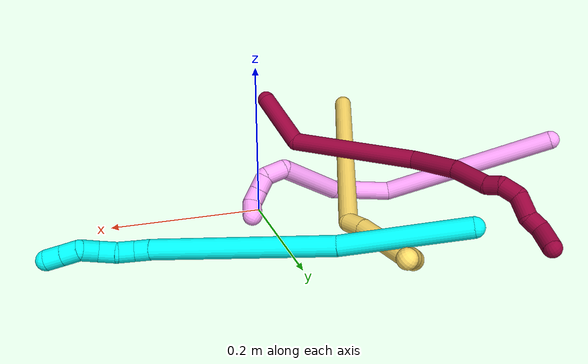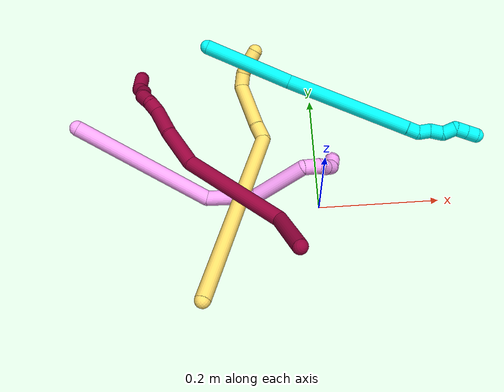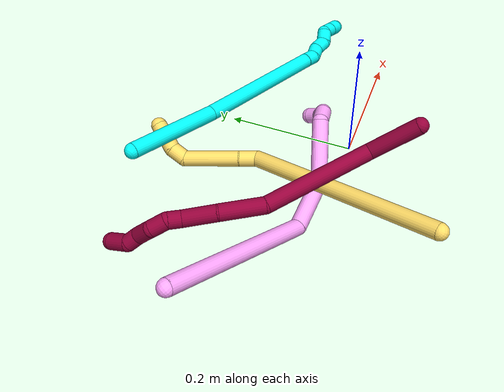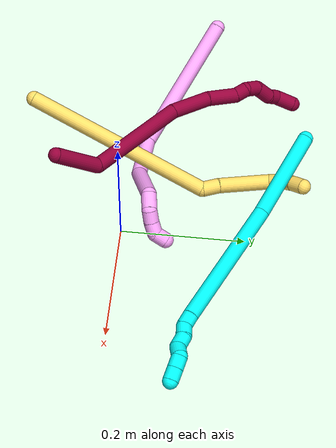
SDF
<sdf version="1.7">
 <world name="default">
  <model name="3">
   <static>0</static>
   <link name="3">
    <collision name="collision-cylinder-e_1_1_4">
     <pose>0.025206 -0.015582 -0.071401 2.92673 0.332128 1.9981</pose>
     <geometry><cylinder><radius>0.0125</radius><length>0.154611</length></cylinder></geometry>
     <surface>
      <friction><ode><mu>1.16</mu><mu2>1.16</mu2><slip1>0</slip1><slip2>0</slip2></ode></friction>
      <contact><ode><kp>1e+06</kp><kd>1</kd><max_vel>0</max_vel><min_depth>0.001</min_depth></ode></contact>
     </surface>
    </collision>
    <visual name="visual-cylinder-e_1_1_4">
     <pose>0.025206 -0.015582 -0.071401 2.92673 0.332128 1.9981</pose>
     <geometry><cylinder><radius>0.0125</radius><length>0.154611</length></cylinder></geometry>
     <material><ambient>0.003922 1 0.996078 1</ambient></material>
    </visual>
    <collision name="collision-cylinder-e_2_4_5">
     <pose>0.084124 -0.041281 -0.247109 3.0449 0.311239 2.5433</pose>
     <geometry><cylinder><radius>0.0125</radius><length>0.220173</length></cylinder></geometry>
     <surface>
      <friction><ode><mu>1.16</mu><mu2>1.16</mu2><slip1>0</slip1><slip2>0</slip2></ode></friction>
      <contact><ode><kp>1e+06</kp><kd>1</kd><max_vel>0</max_vel><min_depth>0.001</min_depth></ode></contact>
     </surface>
    </collision>
    <visual name="visual-cylinder-e_2_4_5">
     <pose>0.084124 -0.041281 -0.247109 3.0449 0.311239 2.5433</pose>
     <geometry><cylinder><radius>0.0125</radius><length>0.220173</length></cylinder></geometry>
     <material><ambient>0.003922 1 0.996078 1</ambient></material>
    </visual>
    <collision name="collision-cylinder-e_3_5_6">
     <pose>0.120963 -0.053057 -0.360888 2.96822 0.314262 2.13818</pose>
     <geometry><cylinder><radius>0.0125</radius><length>0.020222</length></cylinder></geometry>
     <surface>
      <friction><ode><mu>1.16</mu><mu2>1.16</mu2><slip1>0</slip1><slip2>0</slip2></ode></friction>
      <contact><ode><kp>1e+06</kp><kd>1</kd><max_vel>0</max_vel><min_depth>0.001</min_depth></ode></contact>
     </surface>
    </collision>
    <visual name="visual-cylinder-e_3_5_6">
     <pose>0.120963 -0.053057 -0.360888 2.96822 0.314262 2.13818</pose>
     <geometry><cylinder><radius>0.0125</radius><length>0.020222</length></cylinder></geometry>
     <material><ambient>0.003922 1 0.996078 1</ambient></material>
    </visual>
    <collision name="collision-cylinder-e_4_6_7">
     <pose>0.12185 -0.056544 -0.380275 2.95928 -0.218431 -1.75179</pose>
     <geometry><cylinder><radius>0.0125</radius><length>0.020655</length></cylinder></geometry>
     <surface>
      <friction><ode><mu>1.16</mu><mu2>1.16</mu2><slip1>0</slip1><slip2>0</slip2></ode></friction>
      <contact><ode><kp>1e+06</kp><kd>1</kd><max_vel>0</max_vel><min_depth>0.001</min_depth></ode></contact>
     </surface>
    </collision>
    <visual name="visual-cylinder-e_4_6_7">
     <pose>0.12185 -0.056544 -0.380275 2.95928 -0.218431 -1.75179</pose>
     <geometry><cylinder><radius>0.0125</radius><length>0.020655</length></cylinder></geometry>
     <material><ambient>0.003922 1 0.996078 1</ambient></material>
    </visual>
    <collision name="collision-cylinder-e_5_7_8">
     <pose>0.121295 -0.058583 -0.401171 3.12232 0.152073 2.8899</pose>
     <geometry><cylinder><radius>0.0125</radius><length>0.022222</length></cylinder></geometry>
     <surface>
      <friction><ode><mu>1.16</mu><mu2>1.16</mu2><slip1>0</slip1><slip2>0</slip2></ode></friction>
      <contact><ode><kp>1e+06</kp><kd>1</kd><max_vel>0</max_vel><min_depth>0.001</min_depth></ode></contact>
     </surface>
    </collision>
    <visual name="visual-cylinder-e_5_7_8">
     <pose>0.121295 -0.058583 -0.401171 3.12232 0.152073 2.8899</pose>
     <geometry><cylinder><radius>0.0125</radius><length>0.022222</length></cylinder></geometry>
     <material><ambient>0.003922 1 0.996078 1</ambient></material>
    </visual>
    <collision name="collision-cylinder-e_6_8_9">
     <pose>0.117951 -0.05905 -0.421965 3.11561 -0.473281 -3.03394</pose>
     <geometry><cylinder><radius>0.0125</radius><length>0.022059</length></cylinder></geometry>
     <surface>
      <friction><ode><mu>1.16</mu><mu2>1.16</mu2><slip1>0</slip1><slip2>0</slip2></ode></friction>
      <contact><ode><kp>1e+06</kp><kd>1</kd><max_vel>0</max_vel><min_depth>0.001</min_depth></ode></contact>
     </surface>
    </collision>
    <visual name="visual-cylinder-e_6_8_9">
     <pose>0.117951 -0.05905 -0.421965 3.11561 -0.473281 -3.03394</pose>
     <geometry><cylinder><radius>0.0125</radius><length>0.022059</length></cylinder></geometry>
     <material><ambient>0.003922 1 0.996078 1</ambient></material>
    </visual>
    <collision name="collision-cylinder-e_7_9_10">
     <pose>0.115183 -0.062927 -0.440833 2.76107 0.22768 1.07149</pose>
     <geometry><cylinder><radius>0.0125</radius><length>0.02002</length></cylinder></geometry>
     <surface>
      <friction><ode><mu>1.16</mu><mu2>1.16</mu2><slip1>0</slip1><slip2>0</slip2></ode></friction>
      <contact><ode><kp>1e+06</kp><kd>1</kd><max_vel>0</max_vel><min_depth>0.001</min_depth></ode></contact>
     </surface>
    </collision>
    <visual name="visual-cylinder-e_7_9_10">
     <pose>0.115183 -0.062927 -0.440833 2.76107 0.22768 1.07149</pose>
     <geometry><cylinder><radius>0.0125</radius><length>0.02002</length></cylinder></geometry>
     <material><ambient>0.003922 1 0.996078 1</ambient></material>
    </visual>
    <collision name="collision-cylinder-e_8_10_2">
     <pose>0.119738 -0.0701 -0.45897 2.76889 0.231133 1.10378</pose>
     <geometry><cylinder><radius>0.0125</radius><length>0.020038</length></cylinder></geometry>
     <surface>
      <friction><ode><mu>1.16</mu><mu2>1.16</mu2><slip1>0</slip1><slip2>0</slip2></ode></friction>
      <contact><ode><kp>1e+06</kp><kd>1</kd><max_vel>0</max_vel><min_depth>0.001</min_depth></ode></contact>
     </surface>
    </collision>
    <visual name="visual-cylinder-e_8_10_2">
     <pose>0.119738 -0.0701 -0.45897 2.76889 0.231133 1.10378</pose>
     <geometry><cylinder><radius>0.0125</radius><length>0.020038</length></cylinder></geometry>
     <material><ambient>0.003922 1 0.996078 1</ambient></material>
    </visual>
    <collision name="collision-sphere-2">
     <pose>0.122033 -0.073651 -0.468053 0 -0 0</pose>
     <geometry><sphere><radius>0.0125</radius></sphere></geometry>
     <surface>
      <friction><ode><mu>1.16</mu><mu2>1.16</mu2><slip1>0</slip1><slip2>0</slip2></ode></friction>
      <contact><ode><kp>1e+06</kp><kd>1</kd><max_vel>0</max_vel><min_depth>0.001</min_depth></ode></contact>
     </surface>
    </collision>
    <visual name="visual-sphere-2">
     <pose>0.122033 -0.073651 -0.468053 0 -0 0</pose>
     <geometry><sphere><radius>0.0125</radius></sphere></geometry>
     <material><ambient>0.003922 1 0.996078 1</ambient></material>
    </visual>
    <collision name="collision-sphere-10">
     <pose>0.117443 -0.066549 -0.449887 0 -0 0</pose>
     <geometry><sphere><radius>0.0125</radius></sphere></geometry>
     <surface>
      <friction><ode><mu>1.16</mu><mu2>1.16</mu2><slip1>0</slip1><slip2>0</slip2></ode></friction>
      <contact><ode><kp>1e+06</kp><kd>1</kd><max_vel>0</max_vel><min_depth>0.001</min_depth></ode></contact>
     </surface>
    </collision>
    <visual name="visual-sphere-10">
     <pose>0.117443 -0.066549 -0.449887 0 -0 0</pose>
     <geometry><sphere><radius>0.0125</radius></sphere></geometry>
     <material><ambient>0.003922 1 0.996078 1</ambient></material>
    </visual>
    <collision name="collision-sphere-9">
     <pose>0.112924 -0.059305 -0.431779 0 -0 0</pose>
     <geometry><sphere><radius>0.0125</radius></sphere></geometry>
     <surface>
      <friction><ode><mu>1.16</mu><mu2>1.16</mu2><slip1>0</slip1><slip2>0</slip2></ode></friction>
      <contact><ode><kp>1e+06</kp><kd>1</kd><max_vel>0</max_vel><min_depth>0.001</min_depth></ode></contact>
     </surface>
    </collision>
    <visual name="visual-sphere-9">
     <pose>0.112924 -0.059305 -0.431779 0 -0 0</pose>
     <geometry><sphere><radius>0.0125</radius></sphere></geometry>
     <material><ambient>0.003922 1 0.996078 1</ambient></material>
    </visual>
    <collision name="collision-sphere-4">
     <pose>0.050412 -0.031163 -0.142801 0 -0 0</pose>
     <geometry><sphere><radius>0.0125</radius></sphere></geometry>
     <surface>
      <friction><ode><mu>1.16</mu><mu2>1.16</mu2><slip1>0</slip1><slip2>0</slip2></ode></friction>
      <contact><ode><kp>1e+06</kp><kd>1</kd><max_vel>0</max_vel><min_depth>0.001</min_depth></ode></contact>
     </surface>
    </collision>
    <visual name="visual-sphere-4">
     <pose>0.050412 -0.031163 -0.142801 0 -0 0</pose>
     <geometry><sphere><radius>0.0125</radius></sphere></geometry>
     <material><ambient>0.003922 1 0.996078 1</ambient></material>
    </visual>
    <collision name="collision-sphere-1">
     <geometry><sphere><radius>0.0125</radius></sphere></geometry>
     <surface>
      <friction><ode><mu>1.16</mu><mu2>1.16</mu2><slip1>0</slip1><slip2>0</slip2></ode></friction>
      <contact><ode><kp>1e+06</kp><kd>1</kd><max_vel>0</max_vel><min_depth>0.001</min_depth></ode></contact>
     </surface>
    </collision>
    <visual name="visual-sphere-1">
     <geometry><sphere><radius>0.0125</radius></sphere></geometry>
     <material><ambient>0.003922 1 0.996078 1</ambient></material>
    </visual>
    <collision name="collision-sphere-8">
     <pose>0.122978 -0.058795 -0.412152 0 -0 0</pose>
     <geometry><sphere><radius>0.0125</radius></sphere></geometry>
     <surface>
      <friction><ode><mu>1.16</mu><mu2>1.16</mu2><slip1>0</slip1><slip2>0</slip2></ode></friction>
      <contact><ode><kp>1e+06</kp><kd>1</kd><max_vel>0</max_vel><min_depth>0.001</min_depth></ode></contact>
     </surface>
    </collision>
    <visual name="visual-sphere-8">
     <pose>0.122978 -0.058795 -0.412152 0 -0 0</pose>
     <geometry><sphere><radius>0.0125</radius></sphere></geometry>
     <material><ambient>0.003922 1 0.996078 1</ambient></material>
    </visual>
    <collision name="collision-sphere-5">
     <pose>0.117837 -0.051398 -0.351417 0 -0 0</pose>
     <geometry><sphere><radius>0.0125</radius></sphere></geometry>
     <surface>
      <friction><ode><mu>1.16</mu><mu2>1.16</mu2><slip1>0</slip1><slip2>0</slip2></ode></friction>
      <contact><ode><kp>1e+06</kp><kd>1</kd><max_vel>0</max_vel><min_depth>0.001</min_depth></ode></contact>
     </surface>
    </collision>
    <visual name="visual-sphere-5">
     <pose>0.117837 -0.051398 -0.351417 0 -0 0</pose>
     <geometry><sphere><radius>0.0125</radius></sphere></geometry>
     <material><ambient>0.003922 1 0.996078 1</ambient></material>
    </visual>
    <collision name="collision-sphere-6">
     <pose>0.124088 -0.054716 -0.37036 0 -0 0</pose>
     <geometry><sphere><radius>0.0125</radius></sphere></geometry>
     <surface>
      <friction><ode><mu>1.16</mu><mu2>1.16</mu2><slip1>0</slip1><slip2>0</slip2></ode></friction>
      <contact><ode><kp>1e+06</kp><kd>1</kd><max_vel>0</max_vel><min_depth>0.001</min_depth></ode></contact>
     </surface>
    </collision>
    <visual name="visual-sphere-6">
     <pose>0.124088 -0.054716 -0.37036 0 -0 0</pose>
     <geometry><sphere><radius>0.0125</radius></sphere></geometry>
     <material><ambient>0.003922 1 0.996078 1</ambient></material>
    </visual>
    <collision name="collision-sphere-7">
     <pose>0.119612 -0.058371 -0.390191 0 -0 0</pose>
     <geometry><sphere><radius>0.0125</radius></sphere></geometry>
     <surface>
      <friction><ode><mu>1.16</mu><mu2>1.16</mu2><slip1>0</slip1><slip2>0</slip2></ode></friction>
      <contact><ode><kp>1e+06</kp><kd>1</kd><max_vel>0</max_vel><min_depth>0.001</min_depth></ode></contact>
     </surface>
    </collision>
    <visual name="visual-sphere-7">
     <pose>0.119612 -0.058371 -0.390191 0 -0 0</pose>
     <geometry><sphere><radius>0.0125</radius></sphere></geometry>
     <material><ambient>0.003922 1 0.996078 1</ambient></material>
    </visual>
    <inertial>
     <pose>0.074769 -0.038015 -0.233687 0 -0 0</pose>
     <mass>0.5</mass>
     <inertia>
      <ixx>-6.9e-05</ixx>
      <ixy>0</ixy>
      <ixz>0</ixz>
      <iyy>0.001653</iyy>
      <iyz>0</iyz>
      <izz>-0.000267</izz>
     </inertia>
    </inertial>
   </link>
   <pose>-0.172544 0.286575 0.064833 1.73504 0.452394 -1.71322</pose>
  </model>
  <model name="4">
   <static>0</static>
   <link name="4">
    <collision name="collision-cylinder-e_1_1_4">
     <pose>0.072927 0.05078 -0.07721 -2.55984 0.668087 -1.71805</pose>
     <geometry><cylinder><radius>0.0125</radius><length>0.235442</length></cylinder></geometry>
     <surface>
      <friction><ode><mu>1.16</mu><mu2>1.16</mu2><slip1>0</slip1><slip2>0</slip2></ode></friction>
      <contact><ode><kp>1e+06</kp><kd>1</kd><max_vel>0</max_vel><min_depth>0.001</min_depth></ode></contact>
     </surface>
    </collision>
    <visual name="visual-cylinder-e_1_1_4">
     <pose>0.072927 0.05078 -0.07721 -2.55984 0.668087 -1.71805</pose>
     <geometry><cylinder><radius>0.0125</radius><length>0.235442</length></cylinder></geometry>
     <material><ambient>1 0.65098 0.996078 1</ambient></material>
    </visual>
    <collision name="collision-cylinder-e_2_4_5">
     <pose>0.170054 0.094282 -0.186235 2.91673 0.63805 2.48284</pose>
     <geometry><cylinder><radius>0.0125</radius><length>0.081261</length></cylinder></geometry>
     <surface>
      <friction><ode><mu>1.16</mu><mu2>1.16</mu2><slip1>0</slip1><slip2>0</slip2></ode></friction>
      <contact><ode><kp>1e+06</kp><kd>1</kd><max_vel>0</max_vel><min_depth>0.001</min_depth></ode></contact>
     </surface>
    </collision>
    <visual name="visual-cylinder-e_2_4_5">
     <pose>0.170054 0.094282 -0.186235 2.91673 0.63805 2.48284</pose>
     <geometry><cylinder><radius>0.0125</radius><length>0.081261</length></cylinder></geometry>
     <material><ambient>1 0.65098 0.996078 1</ambient></material>
    </visual>
    <collision name="collision-cylinder-e_3_5_6">
     <pose>0.213467 0.056281 -0.248824 2.35698 0.416019 0.943418</pose>
     <geometry><cylinder><radius>0.0125</radius><length>0.095081</length></cylinder></geometry>
     <surface>
      <friction><ode><mu>1.16</mu><mu2>1.16</mu2><slip1>0</slip1><slip2>0</slip2></ode></friction>
      <contact><ode><kp>1e+06</kp><kd>1</kd><max_vel>0</max_vel><min_depth>0.001</min_depth></ode></contact>
     </surface>
    </collision>
    <visual name="visual-cylinder-e_3_5_6">
     <pose>0.213467 0.056281 -0.248824 2.35698 0.416019 0.943418</pose>
     <geometry><cylinder><radius>0.0125</radius><length>0.095081</length></cylinder></geometry>
     <material><ambient>1 0.65098 0.996078 1</ambient></material>
    </visual>
    <collision name="collision-cylinder-e_4_6_7">
     <pose>0.244712 0.024486 -0.286413 2.98597 1.05018 2.87403</pose>
     <geometry><cylinder><radius>0.0125</radius><length>0.027741</length></cylinder></geometry>
     <surface>
      <friction><ode><mu>1.16</mu><mu2>1.16</mu2><slip1>0</slip1><slip2>0</slip2></ode></friction>
      <contact><ode><kp>1e+06</kp><kd>1</kd><max_vel>0</max_vel><min_depth>0.001</min_depth></ode></contact>
     </surface>
    </collision>
    <visual name="visual-cylinder-e_4_6_7">
     <pose>0.244712 0.024486 -0.286413 2.98597 1.05018 2.87403</pose>
     <geometry><cylinder><radius>0.0125</radius><length>0.027741</length></cylinder></geometry>
     <material><ambient>1 0.65098 0.996078 1</ambient></material>
    </visual>
    <collision name="collision-cylinder-e_5_7_8">
     <pose>0.266164 0.026917 -0.292069 -1.25077 1.19767 -0.915682</pose>
     <geometry><cylinder><radius>0.0125</radius><length>0.020232</length></cylinder></geometry>
     <surface>
      <friction><ode><mu>1.16</mu><mu2>1.16</mu2><slip1>0</slip1><slip2>0</slip2></ode></friction>
      <contact><ode><kp>1e+06</kp><kd>1</kd><max_vel>0</max_vel><min_depth>0.001</min_depth></ode></contact>
     </surface>
    </collision>
    <visual name="visual-cylinder-e_5_7_8">
     <pose>0.266164 0.026917 -0.292069 -1.25077 1.19767 -0.915682</pose>
     <geometry><cylinder><radius>0.0125</radius><length>0.020232</length></cylinder></geometry>
     <material><ambient>1 0.65098 0.996078 1</ambient></material>
    </visual>
    <collision name="collision-cylinder-e_6_8_9">
     <pose>0.285324 0.032201 -0.289493 -0.899667 1.34112 -0.731496</pose>
     <geometry><cylinder><radius>0.0125</radius><length>0.020004</length></cylinder></geometry>
     <surface>
      <friction><ode><mu>1.16</mu><mu2>1.16</mu2><slip1>0</slip1><slip2>0</slip2></ode></friction>
      <contact><ode><kp>1e+06</kp><kd>1</kd><max_vel>0</max_vel><min_depth>0.001</min_depth></ode></contact>
     </surface>
    </collision>
    <visual name="visual-cylinder-e_6_8_9">
     <pose>0.285324 0.032201 -0.289493 -0.899667 1.34112 -0.731496</pose>
     <geometry><cylinder><radius>0.0125</radius><length>0.020004</length></cylinder></geometry>
     <material><ambient>1 0.65098 0.996078 1</ambient></material>
    </visual>
    <collision name="collision-cylinder-e_7_9_2">
     <pose>0.302862 0.03087 -0.282431 0.504008 0.879972 0.241245</pose>
     <geometry><cylinder><radius>0.0125</radius><length>0.020239</length></cylinder></geometry>
     <surface>
      <friction><ode><mu>1.16</mu><mu2>1.16</mu2><slip1>0</slip1><slip2>0</slip2></ode></friction>
      <contact><ode><kp>1e+06</kp><kd>1</kd><max_vel>0</max_vel><min_depth>0.001</min_depth></ode></contact>
     </surface>
    </collision>
    <visual name="visual-cylinder-e_7_9_2">
     <pose>0.302862 0.03087 -0.282431 0.504008 0.879972 0.241245</pose>
     <geometry><cylinder><radius>0.0125</radius><length>0.020239</length></cylinder></geometry>
     <material><ambient>1 0.65098 0.996078 1</ambient></material>
    </visual>
    <collision name="collision-sphere-2">
     <pose>0.310661 0.027756 -0.276785 0 -0 0</pose>
     <geometry><sphere><radius>0.0125</radius></sphere></geometry>
     <surface>
      <friction><ode><mu>1.16</mu><mu2>1.16</mu2><slip1>0</slip1><slip2>0</slip2></ode></friction>
      <contact><ode><kp>1e+06</kp><kd>1</kd><max_vel>0</max_vel><min_depth>0.001</min_depth></ode></contact>
     </surface>
    </collision>
    <visual name="visual-sphere-2">
     <pose>0.310661 0.027756 -0.276785 0 -0 0</pose>
     <geometry><sphere><radius>0.0125</radius></sphere></geometry>
     <material><ambient>1 0.65098 0.996078 1</ambient></material>
    </visual>
    <collision name="collision-sphere-9">
     <pose>0.295063 0.033984 -0.288077 0 -0 0</pose>
     <geometry><sphere><radius>0.0125</radius></sphere></geometry>
     <surface>
      <friction><ode><mu>1.16</mu><mu2>1.16</mu2><slip1>0</slip1><slip2>0</slip2></ode></friction>
      <contact><ode><kp>1e+06</kp><kd>1</kd><max_vel>0</max_vel><min_depth>0.001</min_depth></ode></contact>
     </surface>
    </collision>
    <visual name="visual-sphere-9">
     <pose>0.295063 0.033984 -0.288077 0 -0 0</pose>
     <geometry><sphere><radius>0.0125</radius></sphere></geometry>
     <material><ambient>1 0.65098 0.996078 1</ambient></material>
    </visual>
    <collision name="collision-sphere-4">
     <pose>0.145853 0.10156 -0.15442 0 -0 0</pose>
     <geometry><sphere><radius>0.0125</radius></sphere></geometry>
     <surface>
      <friction><ode><mu>1.16</mu><mu2>1.16</mu2><slip1>0</slip1><slip2>0</slip2></ode></friction>
      <contact><ode><kp>1e+06</kp><kd>1</kd><max_vel>0</max_vel><min_depth>0.001</min_depth></ode></contact>
     </surface>
    </collision>
    <visual name="visual-sphere-4">
     <pose>0.145853 0.10156 -0.15442 0 -0 0</pose>
     <geometry><sphere><radius>0.0125</radius></sphere></geometry>
     <material><ambient>1 0.65098 0.996078 1</ambient></material>
    </visual>
    <collision name="collision-sphere-1">
     <geometry><sphere><radius>0.0125</radius></sphere></geometry>
     <surface>
      <friction><ode><mu>1.16</mu><mu2>1.16</mu2><slip1>0</slip1><slip2>0</slip2></ode></friction>
      <contact><ode><kp>1e+06</kp><kd>1</kd><max_vel>0</max_vel><min_depth>0.001</min_depth></ode></contact>
     </surface>
    </collision>
    <visual name="visual-sphere-1">
     <geometry><sphere><radius>0.0125</radius></sphere></geometry>
     <material><ambient>1 0.65098 0.996078 1</ambient></material>
    </visual>
    <collision name="collision-sphere-8">
     <pose>0.275584 0.030418 -0.290909 0 -0 0</pose>
     <geometry><sphere><radius>0.0125</radius></sphere></geometry>
     <surface>
      <friction><ode><mu>1.16</mu><mu2>1.16</mu2><slip1>0</slip1><slip2>0</slip2></ode></friction>
      <contact><ode><kp>1e+06</kp><kd>1</kd><max_vel>0</max_vel><min_depth>0.001</min_depth></ode></contact>
     </surface>
    </collision>
    <visual name="visual-sphere-8">
     <pose>0.275584 0.030418 -0.290909 0 -0 0</pose>
     <geometry><sphere><radius>0.0125</radius></sphere></geometry>
     <material><ambient>1 0.65098 0.996078 1</ambient></material>
    </visual>
    <collision name="collision-sphere-5">
     <pose>0.194254 0.087005 -0.21805 0 -0 0</pose>
     <geometry><sphere><radius>0.0125</radius></sphere></geometry>
     <surface>
      <friction><ode><mu>1.16</mu><mu2>1.16</mu2><slip1>0</slip1><slip2>0</slip2></ode></friction>
      <contact><ode><kp>1e+06</kp><kd>1</kd><max_vel>0</max_vel><min_depth>0.001</min_depth></ode></contact>
     </surface>
    </collision>
    <visual name="visual-sphere-5">
     <pose>0.194254 0.087005 -0.21805 0 -0 0</pose>
     <geometry><sphere><radius>0.0125</radius></sphere></geometry>
     <material><ambient>1 0.65098 0.996078 1</ambient></material>
    </visual>
    <collision name="collision-sphere-6">
     <pose>0.232679 0.025556 -0.279597 0 -0 0</pose>
     <geometry><sphere><radius>0.0125</radius></sphere></geometry>
     <surface>
      <friction><ode><mu>1.16</mu><mu2>1.16</mu2><slip1>0</slip1><slip2>0</slip2></ode></friction>
      <contact><ode><kp>1e+06</kp><kd>1</kd><max_vel>0</max_vel><min_depth>0.001</min_depth></ode></contact>
     </surface>
    </collision>
    <visual name="visual-sphere-6">
     <pose>0.232679 0.025556 -0.279597 0 -0 0</pose>
     <geometry><sphere><radius>0.0125</radius></sphere></geometry>
     <material><ambient>1 0.65098 0.996078 1</ambient></material>
    </visual>
    <collision name="collision-sphere-7">
     <pose>0.256744 0.023417 -0.293229 0 -0 0</pose>
     <geometry><sphere><radius>0.0125</radius></sphere></geometry>
     <surface>
      <friction><ode><mu>1.16</mu><mu2>1.16</mu2><slip1>0</slip1><slip2>0</slip2></ode></friction>
      <contact><ode><kp>1e+06</kp><kd>1</kd><max_vel>0</max_vel><min_depth>0.001</min_depth></ode></contact>
     </surface>
    </collision>
    <visual name="visual-sphere-7">
     <pose>0.256744 0.023417 -0.293229 0 -0 0</pose>
     <geometry><sphere><radius>0.0125</radius></sphere></geometry>
     <material><ambient>1 0.65098 0.996078 1</ambient></material>
    </visual>
    <inertial>
     <pose>0.150592 0.054922 -0.164664 0 -0 0</pose>
     <mass>0.5</mass>
     <inertia>
      <ixx>-0.000864</ixx>
      <ixy>0</ixy>
      <ixz>0</ixz>
      <iyy>-0.000233</iyy>
      <iyz>0</iyz>
      <izz>-0.001182</izz>
     </inertia>
    </inertial>
   </link>
   <pose>-0.37949 0.123019 0.099895 -2.14699 0.617527 0.531318</pose>
  </model>
  <model name="5">
   <static>0</static>
   <link name="5">
    <collision name="collision-cylinder-e_1_1_4">
     <pose>0.006784 0.158184 0.001684 -1.56015 0.042859 -0.042405</pose>
     <geometry><cylinder><radius>0.0125</radius><length>0.316677</length></cylinder></geometry>
     <surface>
      <friction><ode><mu>1.16</mu><mu2>1.16</mu2><slip1>0</slip1><slip2>0</slip2></ode></friction>
      <contact><ode><kp>1e+06</kp><kd>1</kd><max_vel>0</max_vel><min_depth>0.001</min_depth></ode></contact>
     </surface>
    </collision>
    <visual name="visual-cylinder-e_1_1_4">
     <pose>0.006784 0.158184 0.001684 -1.56015 0.042859 -0.042405</pose>
     <geometry><cylinder><radius>0.0125</radius><length>0.316677</length></cylinder></geometry>
     <material><ambient>1 0.858824 0.4 1</ambient></material>
    </visual>
    <collision name="collision-cylinder-e_2_4_5">
     <pose>0.00884 0.326851 0.011391 -0.917471 -0.343924 0.171131</pose>
     <geometry><cylinder><radius>0.0125</radius><length>0.028045</length></cylinder></geometry>
     <surface>
      <friction><ode><mu>1.16</mu><mu2>1.16</mu2><slip1>0</slip1><slip2>0</slip2></ode></friction>
      <contact><ode><kp>1e+06</kp><kd>1</kd><max_vel>0</max_vel><min_depth>0.001</min_depth></ode></contact>
     </surface>
    </collision>
    <visual name="visual-cylinder-e_2_4_5">
     <pose>0.00884 0.326851 0.011391 -0.917471 -0.343924 0.171131</pose>
     <geometry><cylinder><radius>0.0125</radius><length>0.028045</length></cylinder></geometry>
     <material><ambient>1 0.858824 0.4 1</ambient></material>
    </visual>
    <collision name="collision-cylinder-e_3_5_6">
     <pose>-0.010118 0.37289 0.039062 -1.06598 -0.336929 0.200001</pose>
     <geometry><cylinder><radius>0.0125</radius><length>0.086086</length></cylinder></geometry>
     <surface>
      <friction><ode><mu>1.16</mu><mu2>1.16</mu2><slip1>0</slip1><slip2>0</slip2></ode></friction>
      <contact><ode><kp>1e+06</kp><kd>1</kd><max_vel>0</max_vel><min_depth>0.001</min_depth></ode></contact>
     </surface>
    </collision>
    <visual name="visual-cylinder-e_3_5_6">
     <pose>-0.010118 0.37289 0.039062 -1.06598 -0.336929 0.200001</pose>
     <geometry><cylinder><radius>0.0125</radius><length>0.086086</length></cylinder></geometry>
     <material><ambient>1 0.858824 0.4 1</ambient></material>
    </visual>
    <collision name="collision-cylinder-e_4_6_7">
     <pose>-0.02073 0.418363 0.065418 -0.976066 0.293386 -0.156555</pose>
     <geometry><cylinder><radius>0.0125</radius><length>0.025016</length></cylinder></geometry>
     <surface>
      <friction><ode><mu>1.16</mu><mu2>1.16</mu2><slip1>0</slip1><slip2>0</slip2></ode></friction>
      <contact><ode><kp>1e+06</kp><kd>1</kd><max_vel>0</max_vel><min_depth>0.001</min_depth></ode></contact>
     </surface>
    </collision>
    <visual name="visual-cylinder-e_4_6_7">
     <pose>-0.02073 0.418363 0.065418 -0.976066 0.293386 -0.156555</pose>
     <geometry><cylinder><radius>0.0125</radius><length>0.025016</length></cylinder></geometry>
     <material><ambient>1 0.858824 0.4 1</ambient></material>
    </visual>
    <collision name="collision-cylinder-e_5_7_8">
     <pose>-0.010144 0.435185 0.076191 -1.03872 0.715835 -0.421327</pose>
     <geometry><cylinder><radius>0.0125</radius><length>0.021238</length></cylinder></geometry>
     <surface>
      <friction><ode><mu>1.16</mu><mu2>1.16</mu2><slip1>0</slip1><slip2>0</slip2></ode></friction>
      <contact><ode><kp>1e+06</kp><kd>1</kd><max_vel>0</max_vel><min_depth>0.001</min_depth></ode></contact>
     </surface>
    </collision>
    <visual name="visual-cylinder-e_5_7_8">
     <pose>-0.010144 0.435185 0.076191 -1.03872 0.715835 -0.421327</pose>
     <geometry><cylinder><radius>0.0125</radius><length>0.021238</length></cylinder></geometry>
     <material><ambient>1 0.858824 0.4 1</ambient></material>
    </visual>
    <collision name="collision-cylinder-e_6_8_2">
     <pose>0.003861 0.450479 0.08367 -1.18436 0.660484 -0.453286</pose>
     <geometry><cylinder><radius>0.0125</radius><length>0.022938</length></cylinder></geometry>
     <surface>
      <friction><ode><mu>1.16</mu><mu2>1.16</mu2><slip1>0</slip1><slip2>0</slip2></ode></friction>
      <contact><ode><kp>1e+06</kp><kd>1</kd><max_vel>0</max_vel><min_depth>0.001</min_depth></ode></contact>
     </surface>
    </collision>
    <visual name="visual-cylinder-e_6_8_2">
     <pose>0.003861 0.450479 0.08367 -1.18436 0.660484 -0.453286</pose>
     <geometry><cylinder><radius>0.0125</radius><length>0.022938</length></cylinder></geometry>
     <material><ambient>1 0.858824 0.4 1</ambient></material>
    </visual>
    <collision name="collision-sphere-2">
     <pose>0.010897 0.458869 0.087083 0 -0 0</pose>
     <geometry><sphere><radius>0.0125</radius></sphere></geometry>
     <surface>
      <friction><ode><mu>1.16</mu><mu2>1.16</mu2><slip1>0</slip1><slip2>0</slip2></ode></friction>
      <contact><ode><kp>1e+06</kp><kd>1</kd><max_vel>0</max_vel><min_depth>0.001</min_depth></ode></contact>
     </surface>
    </collision>
    <visual name="visual-sphere-2">
     <pose>0.010897 0.458869 0.087083 0 -0 0</pose>
     <geometry><sphere><radius>0.0125</radius></sphere></geometry>
     <material><ambient>1 0.858824 0.4 1</ambient></material>
    </visual>
    <collision name="collision-sphere-4">
     <pose>0.013568 0.316369 0.003367 0 -0 0</pose>
     <geometry><sphere><radius>0.0125</radius></sphere></geometry>
     <surface>
      <friction><ode><mu>1.16</mu><mu2>1.16</mu2><slip1>0</slip1><slip2>0</slip2></ode></friction>
      <contact><ode><kp>1e+06</kp><kd>1</kd><max_vel>0</max_vel><min_depth>0.001</min_depth></ode></contact>
     </surface>
    </collision>
    <visual name="visual-sphere-4">
     <pose>0.013568 0.316369 0.003367 0 -0 0</pose>
     <geometry><sphere><radius>0.0125</radius></sphere></geometry>
     <material><ambient>1 0.858824 0.4 1</ambient></material>
    </visual>
    <collision name="collision-sphere-1">
     <geometry><sphere><radius>0.0125</radius></sphere></geometry>
     <surface>
      <friction><ode><mu>1.16</mu><mu2>1.16</mu2><slip1>0</slip1><slip2>0</slip2></ode></friction>
      <contact><ode><kp>1e+06</kp><kd>1</kd><max_vel>0</max_vel><min_depth>0.001</min_depth></ode></contact>
     </surface>
    </collision>
    <visual name="visual-sphere-1">
     <geometry><sphere><radius>0.0125</radius></sphere></geometry>
     <material><ambient>1 0.858824 0.4 1</ambient></material>
    </visual>
    <collision name="collision-sphere-8">
     <pose>-0.003176 0.44209 0.080256 0 -0 0</pose>
     <geometry><sphere><radius>0.0125</radius></sphere></geometry>
     <surface>
      <friction><ode><mu>1.16</mu><mu2>1.16</mu2><slip1>0</slip1><slip2>0</slip2></ode></friction>
      <contact><ode><kp>1e+06</kp><kd>1</kd><max_vel>0</max_vel><min_depth>0.001</min_depth></ode></contact>
     </surface>
    </collision>
    <visual name="visual-sphere-8">
     <pose>-0.003176 0.44209 0.080256 0 -0 0</pose>
     <geometry><sphere><radius>0.0125</radius></sphere></geometry>
     <material><ambient>1 0.858824 0.4 1</ambient></material>
    </visual>
    <collision name="collision-sphere-5">
     <pose>0.004112 0.337334 0.019415 0 -0 0</pose>
     <geometry><sphere><radius>0.0125</radius></sphere></geometry>
     <surface>
      <friction><ode><mu>1.16</mu><mu2>1.16</mu2><slip1>0</slip1><slip2>0</slip2></ode></friction>
      <contact><ode><kp>1e+06</kp><kd>1</kd><max_vel>0</max_vel><min_depth>0.001</min_depth></ode></contact>
     </surface>
    </collision>
    <visual name="visual-sphere-5">
     <pose>0.004112 0.337334 0.019415 0 -0 0</pose>
     <geometry><sphere><radius>0.0125</radius></sphere></geometry>
     <material><ambient>1 0.858824 0.4 1</ambient></material>
    </visual>
    <collision name="collision-sphere-6">
     <pose>-0.024347 0.408445 0.058709 0 -0 0</pose>
     <geometry><sphere><radius>0.0125</radius></sphere></geometry>
     <surface>
      <friction><ode><mu>1.16</mu><mu2>1.16</mu2><slip1>0</slip1><slip2>0</slip2></ode></friction>
      <contact><ode><kp>1e+06</kp><kd>1</kd><max_vel>0</max_vel><min_depth>0.001</min_depth></ode></contact>
     </surface>
    </collision>
    <visual name="visual-sphere-6">
     <pose>-0.024347 0.408445 0.058709 0 -0 0</pose>
     <geometry><sphere><radius>0.0125</radius></sphere></geometry>
     <material><ambient>1 0.858824 0.4 1</ambient></material>
    </visual>
    <collision name="collision-sphere-7">
     <pose>-0.017113 0.428281 0.072126 0 -0 0</pose>
     <geometry><sphere><radius>0.0125</radius></sphere></geometry>
     <surface>
      <friction><ode><mu>1.16</mu><mu2>1.16</mu2><slip1>0</slip1><slip2>0</slip2></ode></friction>
      <contact><ode><kp>1e+06</kp><kd>1</kd><max_vel>0</max_vel><min_depth>0.001</min_depth></ode></contact>
     </surface>
    </collision>
    <visual name="visual-sphere-7">
     <pose>-0.017113 0.428281 0.072126 0 -0 0</pose>
     <geometry><sphere><radius>0.0125</radius></sphere></geometry>
     <material><ambient>1 0.858824 0.4 1</ambient></material>
    </visual>
    <inertial>
     <pose>0.00176 0.242803 0.018778 0 -0 0</pose>
     <mass>0.5</mass>
     <inertia><ixx>0.002611</ixx><ixy>0</ixy><ixz>0</ixz><iyy>1e-06</iyy><iyz>0</iyz><izz>-0.0028</izz></inertia>
    </inertial>
   </link>
   <pose>-0.186003 -0.16545 0.097948 -0.360788 -0.641226 -0.083341</pose>
  </model>
  <model name="8">
   <static>0</static>
   <link name="8">
    <collision name="collision-cylinder-e_1_1_4">
     <pose>-0.023185 -0.002186 0.034239 0.063761 -0.594274 -0.01953</pose>
     <geometry><cylinder><radius>0.0125</radius><length>0.082816</length></cylinder></geometry>
     <surface>
      <friction><ode><mu>1.16</mu><mu2>1.16</mu2><slip1>0</slip1><slip2>0</slip2></ode></friction>
      <contact><ode><kp>1e+06</kp><kd>1</kd><max_vel>0</max_vel><min_depth>0.001</min_depth></ode></contact>
     </surface>
    </collision>
    <visual name="visual-cylinder-e_1_1_4">
     <pose>-0.023185 -0.002186 0.034239 0.063761 -0.594274 -0.01953</pose>
     <geometry><cylinder><radius>0.0125</radius><length>0.082816</length></cylinder></geometry>
     <material><ambient>0.584314 0 0.227451 1</ambient></material>
    </visual>
    <collision name="collision-cylinder-e_2_4_5">
     <pose>-0.090441 0.050936 0.119357 -0.827091 -0.530388 0.237258</pose>
     <geometry><cylinder><radius>0.0125</radius><length>0.174241</length></cylinder></geometry>
     <surface>
      <friction><ode><mu>1.16</mu><mu2>1.16</mu2><slip1>0</slip1><slip2>0</slip2></ode></friction>
      <contact><ode><kp>1e+06</kp><kd>1</kd><max_vel>0</max_vel><min_depth>0.001</min_depth></ode></contact>
     </surface>
    </collision>
    <visual name="visual-cylinder-e_2_4_5">
     <pose>-0.090441 0.050936 0.119357 -0.827091 -0.530388 0.237258</pose>
     <geometry><cylinder><radius>0.0125</radius><length>0.174241</length></cylinder></geometry>
     <material><ambient>0.584314 0 0.227451 1</ambient></material>
    </visual>
    <collision name="collision-cylinder-e_3_5_6">
     <pose>-0.159672 0.120437 0.185303 -0.755506 -0.882366 0.370472</pose>
     <geometry><cylinder><radius>0.0125</radius><length>0.065159</length></cylinder></geometry>
     <surface>
      <friction><ode><mu>1.16</mu><mu2>1.16</mu2><slip1>0</slip1><slip2>0</slip2></ode></friction>
      <contact><ode><kp>1e+06</kp><kd>1</kd><max_vel>0</max_vel><min_depth>0.001</min_depth></ode></contact>
     </surface>
    </collision>
    <visual name="visual-cylinder-e_3_5_6">
     <pose>-0.159672 0.120437 0.185303 -0.755506 -0.882366 0.370472</pose>
     <geometry><cylinder><radius>0.0125</radius><length>0.065159</length></cylinder></geometry>
     <material><ambient>0.584314 0 0.227451 1</ambient></material>
    </visual>
    <collision name="collision-cylinder-e_4_6_7">
     <pose>-0.20492 0.140795 0.214536 -0.410543 -0.91521 0.204354</pose>
     <geometry><cylinder><radius>0.0125</radius><length>0.050686</length></cylinder></geometry>
     <surface>
      <friction><ode><mu>1.16</mu><mu2>1.16</mu2><slip1>0</slip1><slip2>0</slip2></ode></friction>
      <contact><ode><kp>1e+06</kp><kd>1</kd><max_vel>0</max_vel><min_depth>0.001</min_depth></ode></contact>
     </surface>
    </collision>
    <visual name="visual-cylinder-e_4_6_7">
     <pose>-0.20492 0.140795 0.214536 -0.410543 -0.91521 0.204354</pose>
     <geometry><cylinder><radius>0.0125</radius><length>0.050686</length></cylinder></geometry>
     <material><ambient>0.584314 0 0.227451 1</ambient></material>
    </visual>
    <collision name="collision-cylinder-e_5_7_8">
     <pose>-0.232677 0.152928 0.232296 -1.02864 -0.833339 0.490109</pose>
     <geometry><cylinder><radius>0.0125</radius><length>0.02072</length></cylinder></geometry>
     <surface>
      <friction><ode><mu>1.16</mu><mu2>1.16</mu2><slip1>0</slip1><slip2>0</slip2></ode></friction>
      <contact><ode><kp>1e+06</kp><kd>1</kd><max_vel>0</max_vel><min_depth>0.001</min_depth></ode></contact>
     </surface>
    </collision>
    <visual name="visual-cylinder-e_5_7_8">
     <pose>-0.232677 0.152928 0.232296 -1.02864 -0.833339 0.490109</pose>
     <geometry><cylinder><radius>0.0125</radius><length>0.02072</length></cylinder></geometry>
     <material><ambient>0.584314 0 0.227451 1</ambient></material>
    </visual>
    <collision name="collision-cylinder-e_6_8_9">
     <pose>-0.247302 0.162207 0.245347 -0.336784 -0.60689 0.10636</pose>
     <geometry><cylinder><radius>0.0125</radius><length>0.024395</length></cylinder></geometry>
     <surface>
      <friction><ode><mu>1.16</mu><mu2>1.16</mu2><slip1>0</slip1><slip2>0</slip2></ode></friction>
      <contact><ode><kp>1e+06</kp><kd>1</kd><max_vel>0</max_vel><min_depth>0.001</min_depth></ode></contact>
     </surface>
    </collision>
    <visual name="visual-cylinder-e_6_8_9">
     <pose>-0.247302 0.162207 0.245347 -0.336784 -0.60689 0.10636</pose>
     <geometry><cylinder><radius>0.0125</radius><length>0.024395</length></cylinder></geometry>
     <material><ambient>0.584314 0 0.227451 1</ambient></material>
    </visual>
    <collision name="collision-cylinder-e_7_9_10">
     <pose>-0.261978 0.160862 0.266761 0.37129 -0.541532 -0.10417</pose>
     <geometry><cylinder><radius>0.0125</radius><length>0.02995</length></cylinder></geometry>
     <surface>
      <friction><ode><mu>1.16</mu><mu2>1.16</mu2><slip1>0</slip1><slip2>0</slip2></ode></friction>
      <contact><ode><kp>1e+06</kp><kd>1</kd><max_vel>0</max_vel><min_depth>0.001</min_depth></ode></contact>
     </surface>
    </collision>
    <visual name="visual-cylinder-e_7_9_10">
     <pose>-0.261978 0.160862 0.266761 0.37129 -0.541532 -0.10417</pose>
     <geometry><cylinder><radius>0.0125</radius><length>0.02995</length></cylinder></geometry>
     <material><ambient>0.584314 0 0.227451 1</ambient></material>
    </visual>
    <collision name="collision-cylinder-e_8_10_11">
     <pose>-0.274371 0.157405 0.287566 -0.134682 -0.482374 0.033176</pose>
     <geometry><cylinder><radius>0.0125</radius><length>0.020155</length></cylinder></geometry>
     <surface>
      <friction><ode><mu>1.16</mu><mu2>1.16</mu2><slip1>0</slip1><slip2>0</slip2></ode></friction>
      <contact><ode><kp>1e+06</kp><kd>1</kd><max_vel>0</max_vel><min_depth>0.001</min_depth></ode></contact>
     </surface>
    </collision>
    <visual name="visual-cylinder-e_8_10_11">
     <pose>-0.274371 0.157405 0.287566 -0.134682 -0.482374 0.033176</pose>
     <geometry><cylinder><radius>0.0125</radius><length>0.020155</length></cylinder></geometry>
     <material><ambient>0.584314 0 0.227451 1</ambient></material>
    </visual>
    <collision name="collision-cylinder-e_9_11_2">
     <pose>-0.292132 0.154473 0.304522 0.471166 -0.963123 -0.249585</pose>
     <geometry><cylinder><radius>0.0125</radius><length>0.031878</length></cylinder></geometry>
     <surface>
      <friction><ode><mu>1.16</mu><mu2>1.16</mu2><slip1>0</slip1><slip2>0</slip2></ode></friction>
      <contact><ode><kp>1e+06</kp><kd>1</kd><max_vel>0</max_vel><min_depth>0.001</min_depth></ode></contact>
     </surface>
    </collision>
    <visual name="visual-cylinder-e_9_11_2">
     <pose>-0.292132 0.154473 0.304522 0.471166 -0.963123 -0.249585</pose>
     <geometry><cylinder><radius>0.0125</radius><length>0.031878</length></cylinder></geometry>
     <material><ambient>0.584314 0 0.227451 1</ambient></material>
    </visual>
    <collision name="collision-sphere-2">
     <pose>-0.305217 0.150342 0.312631 0 -0 0</pose>
     <geometry><sphere><radius>0.0125</radius></sphere></geometry>
     <surface>
      <friction><ode><mu>1.16</mu><mu2>1.16</mu2><slip1>0</slip1><slip2>0</slip2></ode></friction>
      <contact><ode><kp>1e+06</kp><kd>1</kd><max_vel>0</max_vel><min_depth>0.001</min_depth></ode></contact>
     </surface>
    </collision>
    <visual name="visual-sphere-2">
     <pose>-0.305217 0.150342 0.312631 0 -0 0</pose>
     <geometry><sphere><radius>0.0125</radius></sphere></geometry>
     <material><ambient>0.584314 0 0.227451 1</ambient></material>
    </visual>
    <collision name="collision-sphere-11">
     <pose>-0.279046 0.158604 0.296413 0 -0 0</pose>
     <geometry><sphere><radius>0.0125</radius></sphere></geometry>
     <surface>
      <friction><ode><mu>1.16</mu><mu2>1.16</mu2><slip1>0</slip1><slip2>0</slip2></ode></friction>
      <contact><ode><kp>1e+06</kp><kd>1</kd><max_vel>0</max_vel><min_depth>0.001</min_depth></ode></contact>
     </surface>
    </collision>
    <visual name="visual-sphere-11">
     <pose>-0.279046 0.158604 0.296413 0 -0 0</pose>
     <geometry><sphere><radius>0.0125</radius></sphere></geometry>
     <material><ambient>0.584314 0 0.227451 1</ambient></material>
    </visual>
    <collision name="collision-sphere-10">
     <pose>-0.269696 0.156206 0.278719 0 -0 0</pose>
     <geometry><sphere><radius>0.0125</radius></sphere></geometry>
     <surface>
      <friction><ode><mu>1.16</mu><mu2>1.16</mu2><slip1>0</slip1><slip2>0</slip2></ode></friction>
      <contact><ode><kp>1e+06</kp><kd>1</kd><max_vel>0</max_vel><min_depth>0.001</min_depth></ode></contact>
     </surface>
    </collision>
    <visual name="visual-sphere-10">
     <pose>-0.269696 0.156206 0.278719 0 -0 0</pose>
     <geometry><sphere><radius>0.0125</radius></sphere></geometry>
     <material><ambient>0.584314 0 0.227451 1</ambient></material>
    </visual>
    <collision name="collision-sphere-9">
     <pose>-0.254259 0.165518 0.254803 0 -0 0</pose>
     <geometry><sphere><radius>0.0125</radius></sphere></geometry>
     <surface>
      <friction><ode><mu>1.16</mu><mu2>1.16</mu2><slip1>0</slip1><slip2>0</slip2></ode></friction>
      <contact><ode><kp>1e+06</kp><kd>1</kd><max_vel>0</max_vel><min_depth>0.001</min_depth></ode></contact>
     </surface>
    </collision>
    <visual name="visual-sphere-9">
     <pose>-0.254259 0.165518 0.254803 0 -0 0</pose>
     <geometry><sphere><radius>0.0125</radius></sphere></geometry>
     <material><ambient>0.584314 0 0.227451 1</ambient></material>
    </visual>
    <collision name="collision-sphere-4">
     <pose>-0.046369 -0.004372 0.068478 0 -0 0</pose>
     <geometry><sphere><radius>0.0125</radius></sphere></geometry>
     <surface>
      <friction><ode><mu>1.16</mu><mu2>1.16</mu2><slip1>0</slip1><slip2>0</slip2></ode></friction>
      <contact><ode><kp>1e+06</kp><kd>1</kd><max_vel>0</max_vel><min_depth>0.001</min_depth></ode></contact>
     </surface>
    </collision>
    <visual name="visual-sphere-4">
     <pose>-0.046369 -0.004372 0.068478 0 -0 0</pose>
     <geometry><sphere><radius>0.0125</radius></sphere></geometry>
     <material><ambient>0.584314 0 0.227451 1</ambient></material>
    </visual>
    <collision name="collision-sphere-1">
     <geometry><sphere><radius>0.0125</radius></sphere></geometry>
     <surface>
      <friction><ode><mu>1.16</mu><mu2>1.16</mu2><slip1>0</slip1><slip2>0</slip2></ode></friction>
      <contact><ode><kp>1e+06</kp><kd>1</kd><max_vel>0</max_vel><min_depth>0.001</min_depth></ode></contact>
     </surface>
    </collision>
    <visual name="visual-sphere-1">
     <geometry><sphere><radius>0.0125</radius></sphere></geometry>
     <material><ambient>0.584314 0 0.227451 1</ambient></material>
    </visual>
    <collision name="collision-sphere-8">
     <pose>-0.240346 0.158896 0.23589 0 -0 0</pose>
     <geometry><sphere><radius>0.0125</radius></sphere></geometry>
     <surface>
      <friction><ode><mu>1.16</mu><mu2>1.16</mu2><slip1>0</slip1><slip2>0</slip2></ode></friction>
      <contact><ode><kp>1e+06</kp><kd>1</kd><max_vel>0</max_vel><min_depth>0.001</min_depth></ode></contact>
     </surface>
    </collision>
    <visual name="visual-sphere-8">
     <pose>-0.240346 0.158896 0.23589 0 -0 0</pose>
     <geometry><sphere><radius>0.0125</radius></sphere></geometry>
     <material><ambient>0.584314 0 0.227451 1</ambient></material>
    </visual>
    <collision name="collision-sphere-5">
     <pose>-0.134512 0.106245 0.170236 0 -0 0</pose>
     <geometry><sphere><radius>0.0125</radius></sphere></geometry>
     <surface>
      <friction><ode><mu>1.16</mu><mu2>1.16</mu2><slip1>0</slip1><slip2>0</slip2></ode></friction>
      <contact><ode><kp>1e+06</kp><kd>1</kd><max_vel>0</max_vel><min_depth>0.001</min_depth></ode></contact>
     </surface>
    </collision>
    <visual name="visual-sphere-5">
     <pose>-0.134512 0.106245 0.170236 0 -0 0</pose>
     <geometry><sphere><radius>0.0125</radius></sphere></geometry>
     <material><ambient>0.584314 0 0.227451 1</ambient></material>
    </visual>
    <collision name="collision-sphere-6">
     <pose>-0.184831 0.134629 0.20037 0 -0 0</pose>
     <geometry><sphere><radius>0.0125</radius></sphere></geometry>
     <surface>
      <friction><ode><mu>1.16</mu><mu2>1.16</mu2><slip1>0</slip1><slip2>0</slip2></ode></friction>
      <contact><ode><kp>1e+06</kp><kd>1</kd><max_vel>0</max_vel><min_depth>0.001</min_depth></ode></contact>
     </surface>
    </collision>
    <visual name="visual-sphere-6">
     <pose>-0.184831 0.134629 0.20037 0 -0 0</pose>
     <geometry><sphere><radius>0.0125</radius></sphere></geometry>
     <material><ambient>0.584314 0 0.227451 1</ambient></material>
    </visual>
    <collision name="collision-sphere-7">
     <pose>-0.225009 0.146961 0.228701 0 -0 0</pose>
     <geometry><sphere><radius>0.0125</radius></sphere></geometry>
     <surface>
      <friction><ode><mu>1.16</mu><mu2>1.16</mu2><slip1>0</slip1><slip2>0</slip2></ode></friction>
      <contact><ode><kp>1e+06</kp><kd>1</kd><max_vel>0</max_vel><min_depth>0.001</min_depth></ode></contact>
     </surface>
    </collision>
    <visual name="visual-sphere-7">
     <pose>-0.225009 0.146961 0.228701 0 -0 0</pose>
     <geometry><sphere><radius>0.0125</radius></sphere></geometry>
     <material><ambient>0.584314 0 0.227451 1</ambient></material>
    </visual>
    <inertial>
     <pose>-0.144024 0.087437 0.161744 0 -0 0</pose>
     <mass>0.5</mass>
     <inertia><ixx>0.000523</ixx><ixy>0</ixy><ixz>0</ixz><iyy>0.00054</iyy><iyz>0</iyz><izz>2.2e-05</izz></inertia>
    </inertial>
   </link>
   <pose>-0.042006 -0.104897 0.130217 2.57947 0.204507 -1.6842</pose>
  </model>
 </world>
</sdf>
